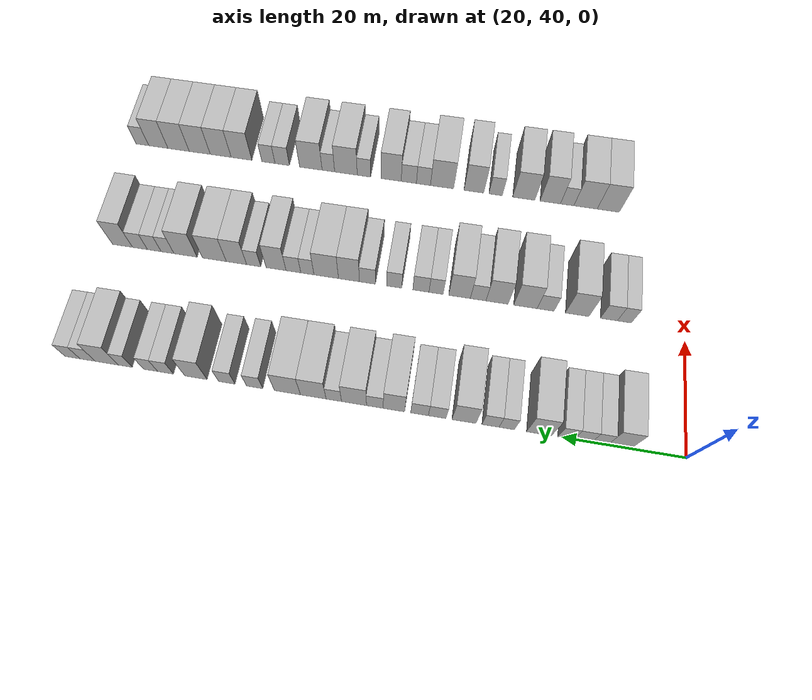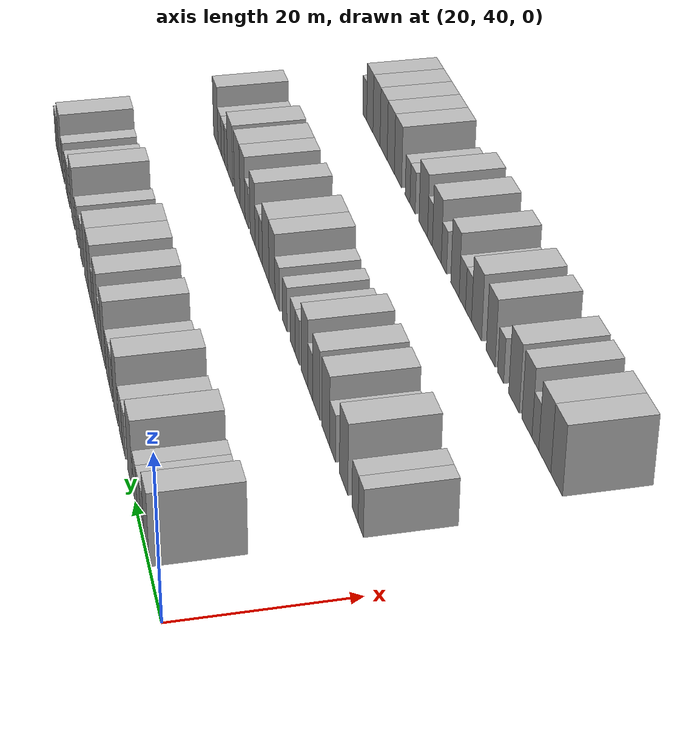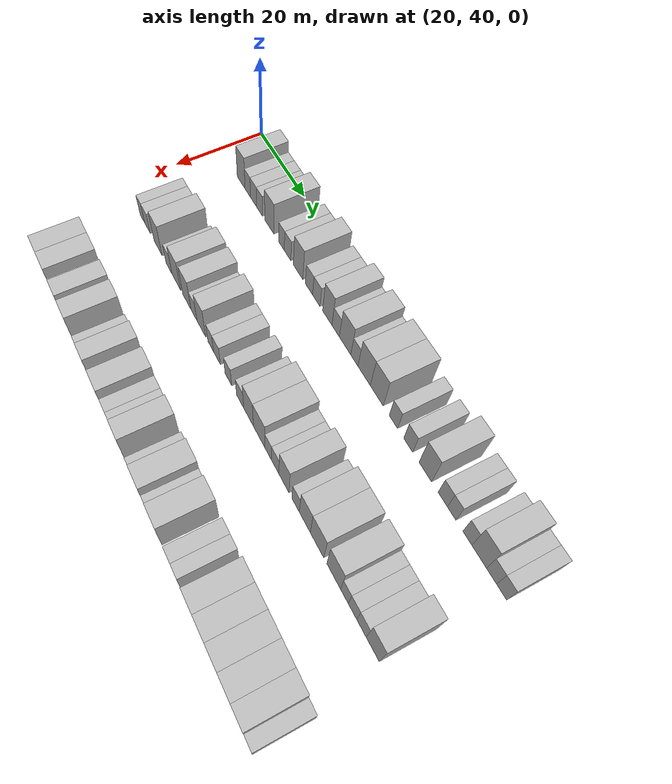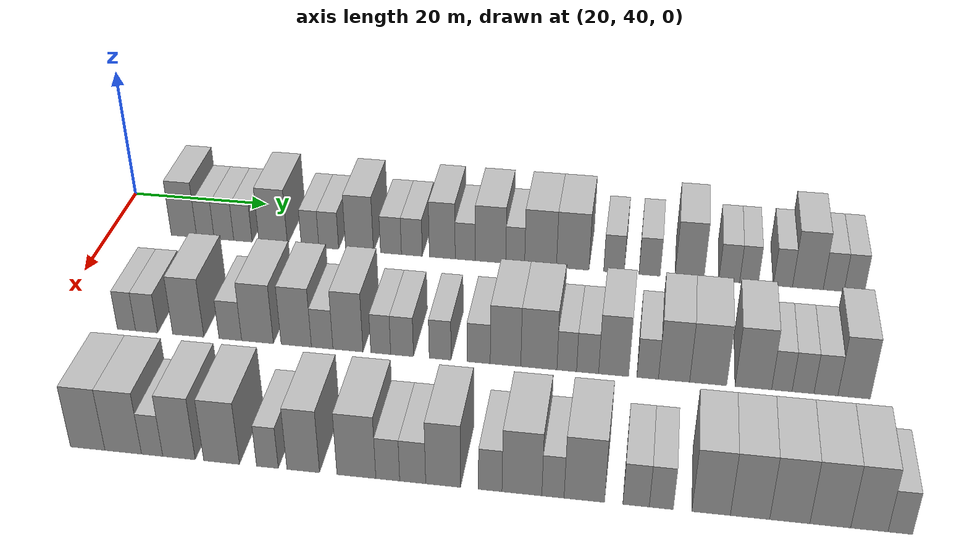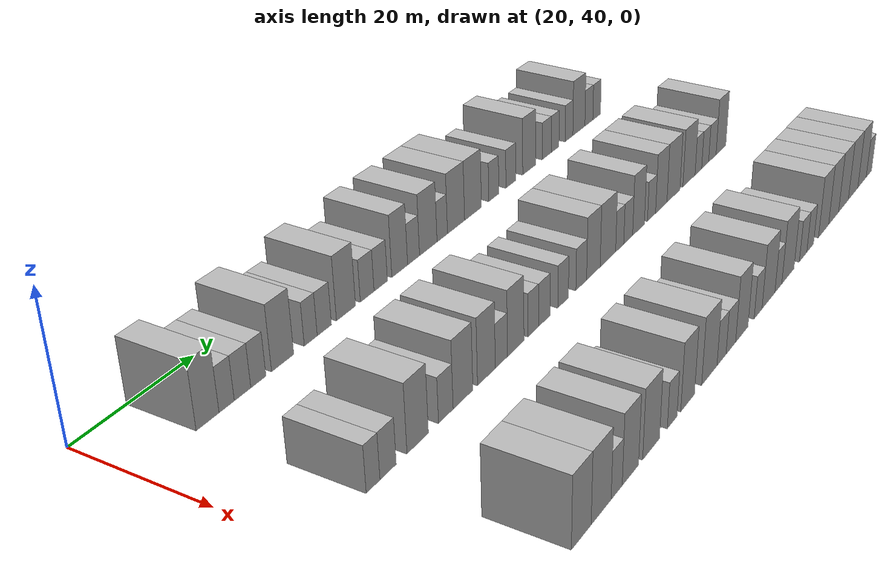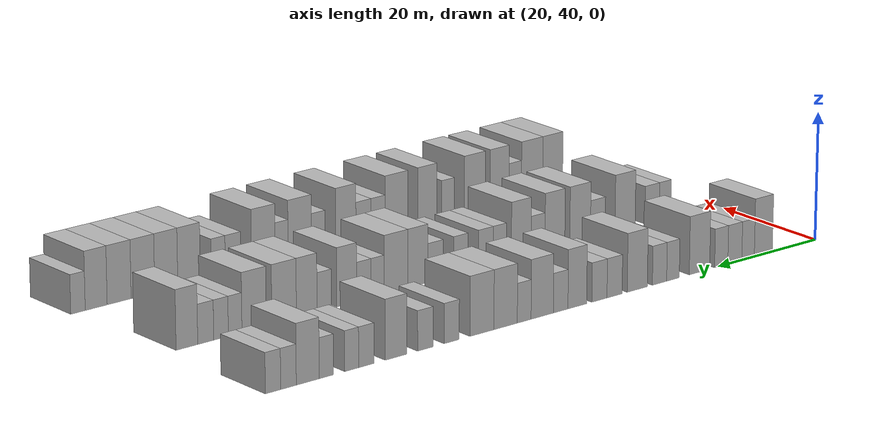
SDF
<sdf version="1.6">
 <world name="default">
  <model name="building_71">
   <static>1</static>
   <pose>25.0000 50.7296 0 0.000000 0.000000 0.000000</pose>
   <link name="link">
    <pose>0 0 4.50 0 0 0</pose>
    <collision name="collision"><geometry><box><size>10.0000 3.7367 9.0000</size></box></geometry></collision>
    <visual name="visual">
     <cast_shadows>0</cast_shadows>
     <geometry><box><size>10.0000 3.7367 9.0000</size></box></geometry>
     <material>
      <script>
       <uri>model://HANNAS_wall/materials/scripts</uri>
       <uri>model://HANNAS_wall/materials/textures</uri>
       <name>vrc/HANNAS_wall</name>
      </script>
     </material>
    </visual>
   </link>
  </model>
  <model name="building_72">
   <static>1</static>
   <pose>25.0000 53.8771 0 0.000000 0.000000 0.000000</pose>
   <link name="link">
    <pose>0 0 3.00 0 0 0</pose>
    <collision name="collision"><geometry><box><size>10.0000 2.5582 6.0000</size></box></geometry></collision>
    <visual name="visual">
     <cast_shadows>0</cast_shadows>
     <geometry><box><size>10.0000 2.5582 6.0000</size></box></geometry>
     <material>
      <script>
       <uri>model://HANNAS_wall/materials/scripts</uri>
       <uri>model://HANNAS_wall/materials/textures</uri>
       <name>vrc/HANNAS_wall</name>
      </script>
     </material>
    </visual>
   </link>
  </model>
  <model name="building_73">
   <static>1</static>
   <pose>25.0000 56.5805 0 0.000000 0.000000 0.000000</pose>
   <link name="link">
    <pose>0 0 3.00 0 0 0</pose>
    <collision name="collision"><geometry><box><size>10.0000 2.8487 6.0000</size></box></geometry></collision>
    <visual name="visual">
     <cast_shadows>0</cast_shadows>
     <geometry><box><size>10.0000 2.8487 6.0000</size></box></geometry>
     <material>
      <script>
       <uri>model://HANNAS_wall/materials/scripts</uri>
       <uri>model://HANNAS_wall/materials/textures</uri>
       <name>vrc/HANNAS_wall</name>
      </script>
     </material>
    </visual>
   </link>
  </model>
  <model name="building_74">
   <static>1</static>
   <pose>25.0000 59.3472 0 0.000000 0.000000 0.000000</pose>
   <link name="link">
    <pose>0 0 3.00 0 0 0</pose>
    <collision name="collision"><geometry><box><size>10.0000 2.6847 6.0000</size></box></geometry></collision>
    <visual name="visual">
     <cast_shadows>0</cast_shadows>
     <geometry><box><size>10.0000 2.6847 6.0000</size></box></geometry>
     <material>
      <script>
       <uri>model://HANNAS_wall/materials/scripts</uri>
       <uri>model://HANNAS_wall/materials/textures</uri>
       <name>vrc/HANNAS_wall</name>
      </script>
     </material>
    </visual>
   </link>
  </model>
  <model name="building_75">
   <static>1</static>
   <pose>25.0000 63.7441 0 0.000000 0.000000 0.000000</pose>
   <link name="link">
    <pose>0 0 4.50 0 0 0</pose>
    <collision name="collision"><geometry><box><size>10.0000 4.1091 9.0000</size></box></geometry></collision>
    <visual name="visual">
     <cast_shadows>0</cast_shadows>
     <geometry><box><size>10.0000 4.1091 9.0000</size></box></geometry>
     <material>
      <script>
       <uri>model://HANNAS_wall/materials/scripts</uri>
       <uri>model://HANNAS_wall/materials/textures</uri>
       <name>vrc/HANNAS_wall</name>
      </script>
     </material>
    </visual>
   </link>
  </model>
  <model name="building_76">
   <static>1</static>
   <pose>25.0000 69.0583 0 0.000000 0.000000 0.000000</pose>
   <link name="link">
    <pose>0 0 3.00 0 0 0</pose>
    <collision name="collision"><geometry><box><size>10.0000 2.5192 6.0000</size></box></geometry></collision>
    <visual name="visual">
     <cast_shadows>0</cast_shadows>
     <geometry><box><size>10.0000 2.5192 6.0000</size></box></geometry>
     <material>
      <script>
       <uri>model://HANNAS_wall/materials/scripts</uri>
       <uri>model://HANNAS_wall/materials/textures</uri>
       <name>vrc/HANNAS_wall</name>
      </script>
     </material>
    </visual>
   </link>
  </model>
  <model name="building_77">
   <static>1</static>
   <pose>25.0000 71.7327 0 0.000000 0.000000 0.000000</pose>
   <link name="link">
    <pose>0 0 3.00 0 0 0</pose>
    <collision name="collision"><geometry><box><size>10.0000 2.8297 6.0000</size></box></geometry></collision>
    <visual name="visual">
     <cast_shadows>0</cast_shadows>
     <geometry><box><size>10.0000 2.8297 6.0000</size></box></geometry>
     <material>
      <script>
       <uri>model://HANNAS_wall/materials/scripts</uri>
       <uri>model://HANNAS_wall/materials/textures</uri>
       <name>vrc/HANNAS_wall</name>
      </script>
     </material>
    </visual>
   </link>
  </model>
  <model name="building_78">
   <static>1</static>
   <pose>25.0000 76.1281 0 0.000000 0.000000 0.000000</pose>
   <link name="link">
    <pose>0 0 4.50 0 0 0</pose>
    <collision name="collision"><geometry><box><size>10.0000 3.9611 9.0000</size></box></geometry></collision>
    <visual name="visual">
     <cast_shadows>0</cast_shadows>
     <geometry><box><size>10.0000 3.9611 9.0000</size></box></geometry>
     <material>
      <script>
       <uri>model://HANNAS_wall/materials/scripts</uri>
       <uri>model://HANNAS_wall/materials/textures</uri>
       <name>vrc/HANNAS_wall</name>
      </script>
     </material>
    </visual>
   </link>
  </model>
  <model name="building_79">
   <static>1</static>
   <pose>25.0000 80.5866 0 0.000000 0.000000 0.000000</pose>
   <link name="link">
    <pose>0 0 3.00 0 0 0</pose>
    <collision name="collision"><geometry><box><size>10.0000 2.9560 6.0000</size></box></geometry></collision>
    <visual name="visual">
     <cast_shadows>0</cast_shadows>
     <geometry><box><size>10.0000 2.9560 6.0000</size></box></geometry>
     <material>
      <script>
       <uri>model://HANNAS_wall/materials/scripts</uri>
       <uri>model://HANNAS_wall/materials/textures</uri>
       <name>vrc/HANNAS_wall</name>
      </script>
     </material>
    </visual>
   </link>
  </model>
  <model name="building_80">
   <static>1</static>
   <pose>25.0000 83.5359 0 0.000000 0.000000 0.000000</pose>
   <link name="link">
    <pose>0 0 3.00 0 0 0</pose>
    <collision name="collision"><geometry><box><size>10.0000 2.9427 6.0000</size></box></geometry></collision>
    <visual name="visual">
     <cast_shadows>0</cast_shadows>
     <geometry><box><size>10.0000 2.9427 6.0000</size></box></geometry>
     <material>
      <script>
       <uri>model://HANNAS_wall/materials/scripts</uri>
       <uri>model://HANNAS_wall/materials/textures</uri>
       <name>vrc/HANNAS_wall</name>
      </script>
     </material>
    </visual>
   </link>
  </model>
  <model name="building_81">
   <static>1</static>
   <pose>25.0000 87.8137 0 0.000000 0.000000 0.000000</pose>
   <link name="link">
    <pose>0 0 4.50 0 0 0</pose>
    <collision name="collision"><geometry><box><size>10.0000 3.6128 9.0000</size></box></geometry></collision>
    <visual name="visual">
     <cast_shadows>0</cast_shadows>
     <geometry><box><size>10.0000 3.6128 9.0000</size></box></geometry>
     <material>
      <script>
       <uri>model://HANNAS_wall/materials/scripts</uri>
       <uri>model://HANNAS_wall/materials/textures</uri>
       <name>vrc/HANNAS_wall</name>
      </script>
     </material>
    </visual>
   </link>
  </model>
  <model name="building_82">
   <static>1</static>
   <pose>25.0000 91.0223 0 0.000000 0.000000 0.000000</pose>
   <link name="link">
    <pose>0 0 3.00 0 0 0</pose>
    <collision name="collision"><geometry><box><size>10.0000 2.8044 6.0000</size></box></geometry></collision>
    <visual name="visual">
     <cast_shadows>0</cast_shadows>
     <geometry><box><size>10.0000 2.8044 6.0000</size></box></geometry>
     <material>
      <script>
       <uri>model://HANNAS_wall/materials/scripts</uri>
       <uri>model://HANNAS_wall/materials/textures</uri>
       <name>vrc/HANNAS_wall</name>
      </script>
     </material>
    </visual>
   </link>
  </model>
  <model name="building_83">
   <static>1</static>
   <pose>25.0000 94.5426 0 0.000000 0.000000 0.000000</pose>
   <link name="link">
    <pose>0 0 4.50 0 0 0</pose>
    <collision name="collision"><geometry><box><size>10.0000 4.2363 9.0000</size></box></geometry></collision>
    <visual name="visual">
     <cast_shadows>0</cast_shadows>
     <geometry><box><size>10.0000 4.2363 9.0000</size></box></geometry>
     <material>
      <script>
       <uri>model://HANNAS_wall/materials/scripts</uri>
       <uri>model://HANNAS_wall/materials/textures</uri>
       <name>vrc/HANNAS_wall</name>
      </script>
     </material>
    </visual>
   </link>
  </model>
  <model name="building_84">
   <static>1</static>
   <pose>25.0000 97.9643 0 0.000000 0.000000 0.000000</pose>
   <link name="link">
    <pose>0 0 3.00 0 0 0</pose>
    <collision name="collision"><geometry><box><size>10.0000 2.6070 6.0000</size></box></geometry></collision>
    <visual name="visual">
     <cast_shadows>0</cast_shadows>
     <geometry><box><size>10.0000 2.6070 6.0000</size></box></geometry>
     <material>
      <script>
       <uri>model://HANNAS_wall/materials/scripts</uri>
       <uri>model://HANNAS_wall/materials/textures</uri>
       <name>vrc/HANNAS_wall</name>
      </script>
     </material>
    </visual>
   </link>
  </model>
  <model name="building_85">
   <static>1</static>
   <pose>25.0000 101.4619 0 0.000000 0.000000 0.000000</pose>
   <link name="link">
    <pose>0 0 4.50 0 0 0</pose>
    <collision name="collision"><geometry><box><size>10.0000 4.3883 9.0000</size></box></geometry></collision>
    <visual name="visual">
     <cast_shadows>0</cast_shadows>
     <geometry><box><size>10.0000 4.3883 9.0000</size></box></geometry>
     <material>
      <script>
       <uri>model://HANNAS_wall/materials/scripts</uri>
       <uri>model://HANNAS_wall/materials/textures</uri>
       <name>vrc/HANNAS_wall</name>
      </script>
     </material>
    </visual>
   </link>
  </model>
  <model name="building_86">
   <static>1</static>
   <pose>25.0000 105.8879 0 0.000000 0.000000 0.000000</pose>
   <link name="link">
    <pose>0 0 4.50 0 0 0</pose>
    <collision name="collision"><geometry><box><size>10.0000 4.4636 9.0000</size></box></geometry></collision>
    <visual name="visual">
     <cast_shadows>0</cast_shadows>
     <geometry><box><size>10.0000 4.4636 9.0000</size></box></geometry>
     <material>
      <script>
       <uri>model://HANNAS_wall/materials/scripts</uri>
       <uri>model://HANNAS_wall/materials/textures</uri>
       <name>vrc/HANNAS_wall</name>
      </script>
     </material>
    </visual>
   </link>
  </model>
  <model name="building_87">
   <static>1</static>
   <pose>25.0000 111.5137 0 0.000000 0.000000 0.000000</pose>
   <link name="link">
    <pose>0 0 3.00 0 0 0</pose>
    <collision name="collision"><geometry><box><size>10.0000 2.7881 6.0000</size></box></geometry></collision>
    <visual name="visual">
     <cast_shadows>0</cast_shadows>
     <geometry><box><size>10.0000 2.7881 6.0000</size></box></geometry>
     <material>
      <script>
       <uri>model://HANNAS_wall/materials/scripts</uri>
       <uri>model://HANNAS_wall/materials/textures</uri>
       <name>vrc/HANNAS_wall</name>
      </script>
     </material>
    </visual>
   </link>
  </model>
  <model name="building_88">
   <static>1</static>
   <pose>25.0000 116.3378 0 0.000000 0.000000 0.000000</pose>
   <link name="link">
    <pose>0 0 3.00 0 0 0</pose>
    <collision name="collision"><geometry><box><size>10.0000 2.8600 6.0000</size></box></geometry></collision>
    <visual name="visual">
     <cast_shadows>0</cast_shadows>
     <geometry><box><size>10.0000 2.8600 6.0000</size></box></geometry>
     <material>
      <script>
       <uri>model://HANNAS_wall/materials/scripts</uri>
       <uri>model://HANNAS_wall/materials/textures</uri>
       <name>vrc/HANNAS_wall</name>
      </script>
     </material>
    </visual>
   </link>
  </model>
  <model name="building_89">
   <static>1</static>
   <pose>25.0000 121.7057 0 0.000000 0.000000 0.000000</pose>
   <link name="link">
    <pose>0 0 4.50 0 0 0</pose>
    <collision name="collision"><geometry><box><size>10.0000 3.8758 9.0000</size></box></geometry></collision>
    <visual name="visual">
     <cast_shadows>0</cast_shadows>
     <geometry><box><size>10.0000 3.8758 9.0000</size></box></geometry>
     <material>
      <script>
       <uri>model://HANNAS_wall/materials/scripts</uri>
       <uri>model://HANNAS_wall/materials/textures</uri>
       <name>vrc/HANNAS_wall</name>
      </script>
     </material>
    </visual>
   </link>
  </model>
  <model name="building_90">
   <static>1</static>
   <pose>25.0000 127.0319 0 0.000000 0.000000 0.000000</pose>
   <link name="link">
    <pose>0 0 3.00 0 0 0</pose>
    <collision name="collision"><geometry><box><size>10.0000 2.7766 6.0000</size></box></geometry></collision>
    <visual name="visual">
     <cast_shadows>0</cast_shadows>
     <geometry><box><size>10.0000 2.7766 6.0000</size></box></geometry>
     <material>
      <script>
       <uri>model://HANNAS_wall/materials/scripts</uri>
       <uri>model://HANNAS_wall/materials/textures</uri>
       <name>vrc/HANNAS_wall</name>
      </script>
     </material>
    </visual>
   </link>
  </model>
  <model name="building_91">
   <static>1</static>
   <pose>25.0000 129.6608 0 0.000000 0.000000 0.000000</pose>
   <link name="link">
    <pose>0 0 3.00 0 0 0</pose>
    <collision name="collision"><geometry><box><size>10.0000 2.4812 6.0000</size></box></geometry></collision>
    <visual name="visual">
     <cast_shadows>0</cast_shadows>
     <geometry><box><size>10.0000 2.4812 6.0000</size></box></geometry>
     <material>
      <script>
       <uri>model://HANNAS_wall/materials/scripts</uri>
       <uri>model://HANNAS_wall/materials/textures</uri>
       <name>vrc/HANNAS_wall</name>
      </script>
     </material>
    </visual>
   </link>
  </model>
  <model name="building_92">
   <static>1</static>
   <pose>25.0000 134.1614 0 0.000000 0.000000 0.000000</pose>
   <link name="link">
    <pose>0 0 3.00 0 0 0</pose>
    <collision name="collision"><geometry><box><size>10.0000 2.5200 6.0000</size></box></geometry></collision>
    <visual name="visual">
     <cast_shadows>0</cast_shadows>
     <geometry><box><size>10.0000 2.5200 6.0000</size></box></geometry>
     <material>
      <script>
       <uri>model://HANNAS_wall/materials/scripts</uri>
       <uri>model://HANNAS_wall/materials/textures</uri>
       <name>vrc/HANNAS_wall</name>
      </script>
     </material>
    </visual>
   </link>
  </model>
  <model name="building_93">
   <static>1</static>
   <pose>25.0000 137.4407 0 0.000000 0.000000 0.000000</pose>
   <link name="link">
    <pose>0 0 4.50 0 0 0</pose>
    <collision name="collision"><geometry><box><size>10.0000 4.0385 9.0000</size></box></geometry></collision>
    <visual name="visual">
     <cast_shadows>0</cast_shadows>
     <geometry><box><size>10.0000 4.0385 9.0000</size></box></geometry>
     <material>
      <script>
       <uri>model://HANNAS_wall/materials/scripts</uri>
       <uri>model://HANNAS_wall/materials/textures</uri>
       <name>vrc/HANNAS_wall</name>
      </script>
     </material>
    </visual>
   </link>
  </model>
  <model name="building_94">
   <static>1</static>
   <pose>25.0000 140.8231 0 0.000000 0.000000 0.000000</pose>
   <link name="link">
    <pose>0 0 3.00 0 0 0</pose>
    <collision name="collision"><geometry><box><size>10.0000 2.7263 6.0000</size></box></geometry></collision>
    <visual name="visual">
     <cast_shadows>0</cast_shadows>
     <geometry><box><size>10.0000 2.7263 6.0000</size></box></geometry>
     <material>
      <script>
       <uri>model://HANNAS_wall/materials/scripts</uri>
       <uri>model://HANNAS_wall/materials/textures</uri>
       <name>vrc/HANNAS_wall</name>
      </script>
     </material>
    </visual>
   </link>
  </model>
  <model name="building_95">
   <static>1</static>
   <pose>25.0000 143.5193 0 0.000000 0.000000 0.000000</pose>
   <link name="link">
    <pose>0 0 3.00 0 0 0</pose>
    <collision name="collision"><geometry><box><size>10.0000 2.6661 6.0000</size></box></geometry></collision>
    <visual name="visual">
     <cast_shadows>0</cast_shadows>
     <geometry><box><size>10.0000 2.6661 6.0000</size></box></geometry>
     <material>
      <script>
       <uri>model://HANNAS_wall/materials/scripts</uri>
       <uri>model://HANNAS_wall/materials/textures</uri>
       <name>vrc/HANNAS_wall</name>
      </script>
     </material>
    </visual>
   </link>
  </model>
  <model name="building_200">
   <static>1</static>
   <pose>47.0000 50.3851 0 0.000000 0.000000 0.000000</pose>
   <link name="link">
    <pose>0 0 3.00 0 0 0</pose>
    <collision name="collision"><geometry><box><size>10.0000 2.4344 6.0000</size></box></geometry></collision>
    <visual name="visual">
     <cast_shadows>0</cast_shadows>
     <geometry><box><size>10.0000 2.4344 6.0000</size></box></geometry>
     <material>
      <script>
       <uri>model://HANNAS_wall/materials/scripts</uri>
       <uri>model://HANNAS_wall/materials/textures</uri>
       <name>vrc/HANNAS_wall</name>
      </script>
     </material>
    </visual>
   </link>
  </model>
  <model name="building_201">
   <static>1</static>
   <pose>47.0000 53.0761 0 0.000000 0.000000 0.000000</pose>
   <link name="link">
    <pose>0 0 3.00 0 0 0</pose>
    <collision name="collision"><geometry><box><size>10.0000 2.9476 6.0000</size></box></geometry></collision>
    <visual name="visual">
     <cast_shadows>0</cast_shadows>
     <geometry><box><size>10.0000 2.9476 6.0000</size></box></geometry>
     <material>
      <script>
       <uri>model://HANNAS_wall/materials/scripts</uri>
       <uri>model://HANNAS_wall/materials/textures</uri>
       <name>vrc/HANNAS_wall</name>
      </script>
     </material>
    </visual>
   </link>
  </model>
  <model name="building_202">
   <static>1</static>
   <pose>47.0000 58.6102 0 0.000000 0.000000 0.000000</pose>
   <link name="link">
    <pose>0 0 4.50 0 0 0</pose>
    <collision name="collision"><geometry><box><size>10.0000 4.1204 9.0000</size></box></geometry></collision>
    <visual name="visual">
     <cast_shadows>0</cast_shadows>
     <geometry><box><size>10.0000 4.1204 9.0000</size></box></geometry>
     <material>
      <script>
       <uri>model://HANNAS_wall/materials/scripts</uri>
       <uri>model://HANNAS_wall/materials/textures</uri>
       <name>vrc/HANNAS_wall</name>
      </script>
     </material>
    </visual>
   </link>
  </model>
  <model name="building_203">
   <static>1</static>
   <pose>47.0000 64.1570 0 0.000000 0.000000 0.000000</pose>
   <link name="link">
    <pose>0 0 3.00 0 0 0</pose>
    <collision name="collision"><geometry><box><size>10.0000 2.9733 6.0000</size></box></geometry></collision>
    <visual name="visual">
     <cast_shadows>0</cast_shadows>
     <geometry><box><size>10.0000 2.9733 6.0000</size></box></geometry>
     <material>
      <script>
       <uri>model://HANNAS_wall/materials/scripts</uri>
       <uri>model://HANNAS_wall/materials/textures</uri>
       <name>vrc/HANNAS_wall</name>
      </script>
     </material>
    </visual>
   </link>
  </model>
  <model name="building_204">
   <static>1</static>
   <pose>47.0000 67.7203 0 0.000000 0.000000 0.000000</pose>
   <link name="link">
    <pose>0 0 4.50 0 0 0</pose>
    <collision name="collision"><geometry><box><size>10.0000 4.1532 9.0000</size></box></geometry></collision>
    <visual name="visual">
     <cast_shadows>0</cast_shadows>
     <geometry><box><size>10.0000 4.1532 9.0000</size></box></geometry>
     <material>
      <script>
       <uri>model://HANNAS_wall/materials/scripts</uri>
       <uri>model://HANNAS_wall/materials/textures</uri>
       <name>vrc/HANNAS_wall</name>
      </script>
     </material>
    </visual>
   </link>
  </model>
  <model name="building_205">
   <static>1</static>
   <pose>47.0000 72.7662 0 0.000000 0.000000 0.000000</pose>
   <link name="link">
    <pose>0 0 4.50 0 0 0</pose>
    <collision name="collision"><geometry><box><size>10.0000 3.9386 9.0000</size></box></geometry></collision>
    <visual name="visual">
     <cast_shadows>0</cast_shadows>
     <geometry><box><size>10.0000 3.9386 9.0000</size></box></geometry>
     <material>
      <script>
       <uri>model://HANNAS_wall/materials/scripts</uri>
       <uri>model://HANNAS_wall/materials/textures</uri>
       <name>vrc/HANNAS_wall</name>
      </script>
     </material>
    </visual>
   </link>
  </model>
  <model name="building_206">
   <static>1</static>
   <pose>47.0000 76.1237 0 0.000000 0.000000 0.000000</pose>
   <link name="link">
    <pose>0 0 3.00 0 0 0</pose>
    <collision name="collision"><geometry><box><size>10.0000 2.7765 6.0000</size></box></geometry></collision>
    <visual name="visual">
     <cast_shadows>0</cast_shadows>
     <geometry><box><size>10.0000 2.7765 6.0000</size></box></geometry>
     <material>
      <script>
       <uri>model://HANNAS_wall/materials/scripts</uri>
       <uri>model://HANNAS_wall/materials/textures</uri>
       <name>vrc/HANNAS_wall</name>
      </script>
     </material>
    </visual>
   </link>
  </model>
  <model name="building_207">
   <static>1</static>
   <pose>47.0000 79.4471 0 0.000000 0.000000 0.000000</pose>
   <link name="link">
    <pose>0 0 4.50 0 0 0</pose>
    <collision name="collision"><geometry><box><size>10.0000 3.8703 9.0000</size></box></geometry></collision>
    <visual name="visual">
     <cast_shadows>0</cast_shadows>
     <geometry><box><size>10.0000 3.8703 9.0000</size></box></geometry>
     <material>
      <script>
       <uri>model://HANNAS_wall/materials/scripts</uri>
       <uri>model://HANNAS_wall/materials/textures</uri>
       <name>vrc/HANNAS_wall</name>
      </script>
     </material>
    </visual>
   </link>
  </model>
  <model name="building_208">
   <static>1</static>
   <pose>47.0000 83.6517 0 0.000000 0.000000 0.000000</pose>
   <link name="link">
    <pose>0 0 3.00 0 0 0</pose>
    <collision name="collision"><geometry><box><size>10.0000 2.5388 6.0000</size></box></geometry></collision>
    <visual name="visual">
     <cast_shadows>0</cast_shadows>
     <geometry><box><size>10.0000 2.5388 6.0000</size></box></geometry>
     <material>
      <script>
       <uri>model://HANNAS_wall/materials/scripts</uri>
       <uri>model://HANNAS_wall/materials/textures</uri>
       <name>vrc/HANNAS_wall</name>
      </script>
     </material>
    </visual>
   </link>
  </model>
  <model name="building_209">
   <static>1</static>
   <pose>47.0000 86.3728 0 0.000000 0.000000 0.000000</pose>
   <link name="link">
    <pose>0 0 3.00 0 0 0</pose>
    <collision name="collision"><geometry><box><size>10.0000 2.9034 6.0000</size></box></geometry></collision>
    <visual name="visual">
     <cast_shadows>0</cast_shadows>
     <geometry><box><size>10.0000 2.9034 6.0000</size></box></geometry>
     <material>
      <script>
       <uri>model://HANNAS_wall/materials/scripts</uri>
       <uri>model://HANNAS_wall/materials/textures</uri>
       <name>vrc/HANNAS_wall</name>
      </script>
     </material>
    </visual>
   </link>
  </model>
  <model name="building_210">
   <static>1</static>
   <pose>47.0000 91.2044 0 0.000000 0.000000 0.000000</pose>
   <link name="link">
    <pose>0 0 3.00 0 0 0</pose>
    <collision name="collision"><geometry><box><size>10.0000 2.7597 6.0000</size></box></geometry></collision>
    <visual name="visual">
     <cast_shadows>0</cast_shadows>
     <geometry><box><size>10.0000 2.7597 6.0000</size></box></geometry>
     <material>
      <script>
       <uri>model://HANNAS_wall/materials/scripts</uri>
       <uri>model://HANNAS_wall/materials/textures</uri>
       <name>vrc/HANNAS_wall</name>
      </script>
     </material>
    </visual>
   </link>
  </model>
  <model name="building_211">
   <static>1</static>
   <pose>47.0000 96.0433 0 0.000000 0.000000 0.000000</pose>
   <link name="link">
    <pose>0 0 3.00 0 0 0</pose>
    <collision name="collision"><geometry><box><size>10.0000 2.9183 6.0000</size></box></geometry></collision>
    <visual name="visual">
     <cast_shadows>0</cast_shadows>
     <geometry><box><size>10.0000 2.9183 6.0000</size></box></geometry>
     <material>
      <script>
       <uri>model://HANNAS_wall/materials/scripts</uri>
       <uri>model://HANNAS_wall/materials/textures</uri>
       <name>vrc/HANNAS_wall</name>
      </script>
     </material>
    </visual>
   </link>
  </model>
  <model name="building_212">
   <static>1</static>
   <pose>47.0000 99.4123 0 0.000000 0.000000 0.000000</pose>
   <link name="link">
    <pose>0 0 4.50 0 0 0</pose>
    <collision name="collision"><geometry><box><size>10.0000 3.8197 9.0000</size></box></geometry></collision>
    <visual name="visual">
     <cast_shadows>0</cast_shadows>
     <geometry><box><size>10.0000 3.8197 9.0000</size></box></geometry>
     <material>
      <script>
       <uri>model://HANNAS_wall/materials/scripts</uri>
       <uri>model://HANNAS_wall/materials/textures</uri>
       <name>vrc/HANNAS_wall</name>
      </script>
     </material>
    </visual>
   </link>
  </model>
  <model name="building_213">
   <static>1</static>
   <pose>47.0000 103.5693 0 0.000000 0.000000 0.000000</pose>
   <link name="link">
    <pose>0 0 4.50 0 0 0</pose>
    <collision name="collision"><geometry><box><size>10.0000 4.4943 9.0000</size></box></geometry></collision>
    <visual name="visual">
     <cast_shadows>0</cast_shadows>
     <geometry><box><size>10.0000 4.4943 9.0000</size></box></geometry>
     <material>
      <script>
       <uri>model://HANNAS_wall/materials/scripts</uri>
       <uri>model://HANNAS_wall/materials/textures</uri>
       <name>vrc/HANNAS_wall</name>
      </script>
     </material>
    </visual>
   </link>
  </model>
  <model name="building_214">
   <static>1</static>
   <pose>47.0000 107.0297 0 0.000000 0.000000 0.000000</pose>
   <link name="link">
    <pose>0 0 3.00 0 0 0</pose>
    <collision name="collision"><geometry><box><size>10.0000 2.4264 6.0000</size></box></geometry></collision>
    <visual name="visual">
     <cast_shadows>0</cast_shadows>
     <geometry><box><size>10.0000 2.4264 6.0000</size></box></geometry>
     <material>
      <script>
       <uri>model://HANNAS_wall/materials/scripts</uri>
       <uri>model://HANNAS_wall/materials/textures</uri>
       <name>vrc/HANNAS_wall</name>
      </script>
     </material>
    </visual>
   </link>
  </model>
  <model name="building_215">
   <static>1</static>
   <pose>47.0000 109.5999 0 0.000000 0.000000 0.000000</pose>
   <link name="link">
    <pose>0 0 3.00 0 0 0</pose>
    <collision name="collision"><geometry><box><size>10.0000 2.7139 6.0000</size></box></geometry></collision>
    <visual name="visual">
     <cast_shadows>0</cast_shadows>
     <geometry><box><size>10.0000 2.7139 6.0000</size></box></geometry>
     <material>
      <script>
       <uri>model://HANNAS_wall/materials/scripts</uri>
       <uri>model://HANNAS_wall/materials/textures</uri>
       <name>vrc/HANNAS_wall</name>
      </script>
     </material>
    </visual>
   </link>
  </model>
  <model name="building_216">
   <static>1</static>
   <pose>47.0000 112.7995 0 0.000000 0.000000 0.000000</pose>
   <link name="link">
    <pose>0 0 4.50 0 0 0</pose>
    <collision name="collision"><geometry><box><size>10.0000 3.6853 9.0000</size></box></geometry></collision>
    <visual name="visual">
     <cast_shadows>0</cast_shadows>
     <geometry><box><size>10.0000 3.6853 9.0000</size></box></geometry>
     <material>
      <script>
       <uri>model://HANNAS_wall/materials/scripts</uri>
       <uri>model://HANNAS_wall/materials/textures</uri>
       <name>vrc/HANNAS_wall</name>
      </script>
     </material>
    </visual>
   </link>
  </model>
  <model name="building_217">
   <static>1</static>
   <pose>47.0000 116.9558 0 0.000000 0.000000 0.000000</pose>
   <link name="link">
    <pose>0 0 3.00 0 0 0</pose>
    <collision name="collision"><geometry><box><size>10.0000 2.6274 6.0000</size></box></geometry></collision>
    <visual name="visual">
     <cast_shadows>0</cast_shadows>
     <geometry><box><size>10.0000 2.6274 6.0000</size></box></geometry>
     <material>
      <script>
       <uri>model://HANNAS_wall/materials/scripts</uri>
       <uri>model://HANNAS_wall/materials/textures</uri>
       <name>vrc/HANNAS_wall</name>
      </script>
     </material>
    </visual>
   </link>
  </model>
  <model name="building_218">
   <static>1</static>
   <pose>47.0000 120.1634 0 0.000000 0.000000 0.000000</pose>
   <link name="link">
    <pose>0 0 4.50 0 0 0</pose>
    <collision name="collision"><geometry><box><size>10.0000 3.7877 9.0000</size></box></geometry></collision>
    <visual name="visual">
     <cast_shadows>0</cast_shadows>
     <geometry><box><size>10.0000 3.7877 9.0000</size></box></geometry>
     <material>
      <script>
       <uri>model://HANNAS_wall/materials/scripts</uri>
       <uri>model://HANNAS_wall/materials/textures</uri>
       <name>vrc/HANNAS_wall</name>
      </script>
     </material>
    </visual>
   </link>
  </model>
  <model name="building_219">
   <static>1</static>
   <pose>47.0000 124.2937 0 0.000000 0.000000 0.000000</pose>
   <link name="link">
    <pose>0 0 4.50 0 0 0</pose>
    <collision name="collision"><geometry><box><size>10.0000 4.4730 9.0000</size></box></geometry></collision>
    <visual name="visual">
     <cast_shadows>0</cast_shadows>
     <geometry><box><size>10.0000 4.4730 9.0000</size></box></geometry>
     <material>
      <script>
       <uri>model://HANNAS_wall/materials/scripts</uri>
       <uri>model://HANNAS_wall/materials/textures</uri>
       <name>vrc/HANNAS_wall</name>
      </script>
     </material>
    </visual>
   </link>
  </model>
  <model name="building_220">
   <static>1</static>
   <pose>47.0000 129.7181 0 0.000000 0.000000 0.000000</pose>
   <link name="link">
    <pose>0 0 4.50 0 0 0</pose>
    <collision name="collision"><geometry><box><size>10.0000 4.3758 9.0000</size></box></geometry></collision>
    <visual name="visual">
     <cast_shadows>0</cast_shadows>
     <geometry><box><size>10.0000 4.3758 9.0000</size></box></geometry>
     <material>
      <script>
       <uri>model://HANNAS_wall/materials/scripts</uri>
       <uri>model://HANNAS_wall/materials/textures</uri>
       <name>vrc/HANNAS_wall</name>
      </script>
     </material>
    </visual>
   </link>
  </model>
  <model name="building_221">
   <static>1</static>
   <pose>47.0000 133.1215 0 0.000000 0.000000 0.000000</pose>
   <link name="link">
    <pose>0 0 3.00 0 0 0</pose>
    <collision name="collision"><geometry><box><size>10.0000 2.4311 6.0000</size></box></geometry></collision>
    <visual name="visual">
     <cast_shadows>0</cast_shadows>
     <geometry><box><size>10.0000 2.4311 6.0000</size></box></geometry>
     <material>
      <script>
       <uri>model://HANNAS_wall/materials/scripts</uri>
       <uri>model://HANNAS_wall/materials/textures</uri>
       <name>vrc/HANNAS_wall</name>
      </script>
     </material>
    </visual>
   </link>
  </model>
  <model name="building_222">
   <static>1</static>
   <pose>47.0000 135.6371 0 0.000000 0.000000 0.000000</pose>
   <link name="link">
    <pose>0 0 3.00 0 0 0</pose>
    <collision name="collision"><geometry><box><size>10.0000 2.6001 6.0000</size></box></geometry></collision>
    <visual name="visual">
     <cast_shadows>0</cast_shadows>
     <geometry><box><size>10.0000 2.6001 6.0000</size></box></geometry>
     <material>
      <script>
       <uri>model://HANNAS_wall/materials/scripts</uri>
       <uri>model://HANNAS_wall/materials/textures</uri>
       <name>vrc/HANNAS_wall</name>
      </script>
     </material>
    </visual>
   </link>
  </model>
  <model name="building_223">
   <static>1</static>
   <pose>47.0000 138.3552 0 0.000000 0.000000 0.000000</pose>
   <link name="link">
    <pose>0 0 3.00 0 0 0</pose>
    <collision name="collision"><geometry><box><size>10.0000 2.8360 6.0000</size></box></geometry></collision>
    <visual name="visual">
     <cast_shadows>0</cast_shadows>
     <geometry><box><size>10.0000 2.8360 6.0000</size></box></geometry>
     <material>
      <script>
       <uri>model://HANNAS_wall/materials/scripts</uri>
       <uri>model://HANNAS_wall/materials/textures</uri>
       <name>vrc/HANNAS_wall</name>
      </script>
     </material>
    </visual>
   </link>
  </model>
  <model name="building_224">
   <static>1</static>
   <pose>47.0000 141.6776 0 0.000000 0.000000 0.000000</pose>
   <link name="link">
    <pose>0 0 4.50 0 0 0</pose>
    <collision name="collision"><geometry><box><size>10.0000 3.8087 9.0000</size></box></geometry></collision>
    <visual name="visual">
     <cast_shadows>0</cast_shadows>
     <geometry><box><size>10.0000 3.8087 9.0000</size></box></geometry>
     <material>
      <script>
       <uri>model://HANNAS_wall/materials/scripts</uri>
       <uri>model://HANNAS_wall/materials/textures</uri>
       <name>vrc/HANNAS_wall</name>
      </script>
     </material>
    </visual>
   </link>
  </model>
  <model name="building_319">
   <static>1</static>
   <pose>69.0000 53.8874 0 0.000000 0.000000 0.000000</pose>
   <link name="link">
    <pose>0 0 4.50 0 0 0</pose>
    <collision name="collision"><geometry><box><size>10.0000 4.1358 9.0000</size></box></geometry></collision>
    <visual name="visual">
     <cast_shadows>0</cast_shadows>
     <geometry><box><size>10.0000 4.1358 9.0000</size></box></geometry>
     <material>
      <script>
       <uri>model://HANNAS_wall/materials/scripts</uri>
       <uri>model://HANNAS_wall/materials/textures</uri>
       <name>vrc/HANNAS_wall</name>
      </script>
     </material>
    </visual>
   </link>
  </model>
  <model name="building_320">
   <static>1</static>
   <pose>69.0000 58.1391 0 0.000000 0.000000 0.000000</pose>
   <link name="link">
    <pose>0 0 4.50 0 0 0</pose>
    <collision name="collision"><geometry><box><size>10.0000 4.3676 9.0000</size></box></geometry></collision>
    <visual name="visual">
     <cast_shadows>0</cast_shadows>
     <geometry><box><size>10.0000 4.3676 9.0000</size></box></geometry>
     <material>
      <script>
       <uri>model://HANNAS_wall/materials/scripts</uri>
       <uri>model://HANNAS_wall/materials/textures</uri>
       <name>vrc/HANNAS_wall</name>
      </script>
     </material>
    </visual>
   </link>
  </model>
  <model name="building_321">
   <static>1</static>
   <pose>69.0000 61.5845 0 0.000000 0.000000 0.000000</pose>
   <link name="link">
    <pose>0 0 3.00 0 0 0</pose>
    <collision name="collision"><geometry><box><size>10.0000 2.5232 6.0000</size></box></geometry></collision>
    <visual name="visual">
     <cast_shadows>0</cast_shadows>
     <geometry><box><size>10.0000 2.5232 6.0000</size></box></geometry>
     <material>
      <script>
       <uri>model://HANNAS_wall/materials/scripts</uri>
       <uri>model://HANNAS_wall/materials/textures</uri>
       <name>vrc/HANNAS_wall</name>
      </script>
     </material>
    </visual>
   </link>
  </model>
  <model name="building_322">
   <static>1</static>
   <pose>69.0000 64.7650 0 0.000000 0.000000 0.000000</pose>
   <link name="link">
    <pose>0 0 4.50 0 0 0</pose>
    <collision name="collision"><geometry><box><size>10.0000 3.8378 9.0000</size></box></geometry></collision>
    <visual name="visual">
     <cast_shadows>0</cast_shadows>
     <geometry><box><size>10.0000 3.8378 9.0000</size></box></geometry>
     <material>
      <script>
       <uri>model://HANNAS_wall/materials/scripts</uri>
       <uri>model://HANNAS_wall/materials/textures</uri>
       <name>vrc/HANNAS_wall</name>
      </script>
     </material>
    </visual>
   </link>
  </model>
  <model name="building_323">
   <static>1</static>
   <pose>69.0000 69.7768 0 0.000000 0.000000 0.000000</pose>
   <link name="link">
    <pose>0 0 4.50 0 0 0</pose>
    <collision name="collision"><geometry><box><size>10.0000 4.1857 9.0000</size></box></geometry></collision>
    <visual name="visual">
     <cast_shadows>0</cast_shadows>
     <geometry><box><size>10.0000 4.1857 9.0000</size></box></geometry>
     <material>
      <script>
       <uri>model://HANNAS_wall/materials/scripts</uri>
       <uri>model://HANNAS_wall/materials/textures</uri>
       <name>vrc/HANNAS_wall</name>
      </script>
     </material>
    </visual>
   </link>
  </model>
  <model name="building_324">
   <static>1</static>
   <pose>69.0000 75.1324 0 0.000000 0.000000 0.000000</pose>
   <link name="link">
    <pose>0 0 3.00 0 0 0</pose>
    <collision name="collision"><geometry><box><size>10.0000 2.5255 6.0000</size></box></geometry></collision>
    <visual name="visual">
     <cast_shadows>0</cast_shadows>
     <geometry><box><size>10.0000 2.5255 6.0000</size></box></geometry>
     <material>
      <script>
       <uri>model://HANNAS_wall/materials/scripts</uri>
       <uri>model://HANNAS_wall/materials/textures</uri>
       <name>vrc/HANNAS_wall</name>
      </script>
     </material>
    </visual>
   </link>
  </model>
  <model name="building_325">
   <static>1</static>
   <pose>69.0000 79.2779 0 0.000000 0.000000 0.000000</pose>
   <link name="link">
    <pose>0 0 4.50 0 0 0</pose>
    <collision name="collision"><geometry><box><size>10.0000 3.7656 9.0000</size></box></geometry></collision>
    <visual name="visual">
     <cast_shadows>0</cast_shadows>
     <geometry><box><size>10.0000 3.7656 9.0000</size></box></geometry>
     <material>
      <script>
       <uri>model://HANNAS_wall/materials/scripts</uri>
       <uri>model://HANNAS_wall/materials/textures</uri>
       <name>vrc/HANNAS_wall</name>
      </script>
     </material>
    </visual>
   </link>
  </model>
  <model name="building_326">
   <static>1</static>
   <pose>69.0000 85.3823 0 0.000000 0.000000 0.000000</pose>
   <link name="link">
    <pose>0 0 4.50 0 0 0</pose>
    <collision name="collision"><geometry><box><size>10.0000 4.4432 9.0000</size></box></geometry></collision>
    <visual name="visual">
     <cast_shadows>0</cast_shadows>
     <geometry><box><size>10.0000 4.4432 9.0000</size></box></geometry>
     <material>
      <script>
       <uri>model://HANNAS_wall/materials/scripts</uri>
       <uri>model://HANNAS_wall/materials/textures</uri>
       <name>vrc/HANNAS_wall</name>
      </script>
     </material>
    </visual>
   </link>
  </model>
  <model name="building_327">
   <static>1</static>
   <pose>69.0000 88.9604 0 0.000000 0.000000 0.000000</pose>
   <link name="link">
    <pose>0 0 3.00 0 0 0</pose>
    <collision name="collision"><geometry><box><size>10.0000 2.7129 6.0000</size></box></geometry></collision>
    <visual name="visual">
     <cast_shadows>0</cast_shadows>
     <geometry><box><size>10.0000 2.7129 6.0000</size></box></geometry>
     <material>
      <script>
       <uri>model://HANNAS_wall/materials/scripts</uri>
       <uri>model://HANNAS_wall/materials/textures</uri>
       <name>vrc/HANNAS_wall</name>
      </script>
     </material>
    </visual>
   </link>
  </model>
  <model name="building_328">
   <static>1</static>
   <pose>69.0000 91.7883 0 0.000000 0.000000 0.000000</pose>
   <link name="link">
    <pose>0 0 3.00 0 0 0</pose>
    <collision name="collision"><geometry><box><size>10.0000 2.9428 6.0000</size></box></geometry></collision>
    <visual name="visual">
     <cast_shadows>0</cast_shadows>
     <geometry><box><size>10.0000 2.9428 6.0000</size></box></geometry>
     <material>
      <script>
       <uri>model://HANNAS_wall/materials/scripts</uri>
       <uri>model://HANNAS_wall/materials/textures</uri>
       <name>vrc/HANNAS_wall</name>
      </script>
     </material>
    </visual>
   </link>
  </model>
  <model name="building_329">
   <static>1</static>
   <pose>69.0000 95.2253 0 0.000000 0.000000 0.000000</pose>
   <link name="link">
    <pose>0 0 4.50 0 0 0</pose>
    <collision name="collision"><geometry><box><size>10.0000 3.9313 9.0000</size></box></geometry></collision>
    <visual name="visual">
     <cast_shadows>0</cast_shadows>
     <geometry><box><size>10.0000 3.9313 9.0000</size></box></geometry>
     <material>
      <script>
       <uri>model://HANNAS_wall/materials/scripts</uri>
       <uri>model://HANNAS_wall/materials/textures</uri>
       <name>vrc/HANNAS_wall</name>
      </script>
     </material>
    </visual>
   </link>
  </model>
  <model name="building_330">
   <static>1</static>
   <pose>69.0000 100.5036 0 0.000000 0.000000 0.000000</pose>
   <link name="link">
    <pose>0 0 3.00 0 0 0</pose>
    <collision name="collision"><geometry><box><size>10.0000 2.6253 6.0000</size></box></geometry></collision>
    <visual name="visual">
     <cast_shadows>0</cast_shadows>
     <geometry><box><size>10.0000 2.6253 6.0000</size></box></geometry>
     <material>
      <script>
       <uri>model://HANNAS_wall/materials/scripts</uri>
       <uri>model://HANNAS_wall/materials/textures</uri>
       <name>vrc/HANNAS_wall</name>
      </script>
     </material>
    </visual>
   </link>
  </model>
  <model name="building_331">
   <static>1</static>
   <pose>69.0000 104.0275 0 0.000000 0.000000 0.000000</pose>
   <link name="link">
    <pose>0 0 4.50 0 0 0</pose>
    <collision name="collision"><geometry><box><size>10.0000 4.4226 9.0000</size></box></geometry></collision>
    <visual name="visual">
     <cast_shadows>0</cast_shadows>
     <geometry><box><size>10.0000 4.4226 9.0000</size></box></geometry>
     <material>
      <script>
       <uri>model://HANNAS_wall/materials/scripts</uri>
       <uri>model://HANNAS_wall/materials/textures</uri>
       <name>vrc/HANNAS_wall</name>
      </script>
     </material>
    </visual>
   </link>
  </model>
  <model name="building_332">
   <static>1</static>
   <pose>69.0000 107.4672 0 0.000000 0.000000 0.000000</pose>
   <link name="link">
    <pose>0 0 3.00 0 0 0</pose>
    <collision name="collision"><geometry><box><size>10.0000 2.4568 6.0000</size></box></geometry></collision>
    <visual name="visual">
     <cast_shadows>0</cast_shadows>
     <geometry><box><size>10.0000 2.4568 6.0000</size></box></geometry>
     <material>
      <script>
       <uri>model://HANNAS_wall/materials/scripts</uri>
       <uri>model://HANNAS_wall/materials/textures</uri>
       <name>vrc/HANNAS_wall</name>
      </script>
     </material>
    </visual>
   </link>
  </model>
  <model name="building_333">
   <static>1</static>
   <pose>69.0000 110.9164 0 0.000000 0.000000 0.000000</pose>
   <link name="link">
    <pose>0 0 4.50 0 0 0</pose>
    <collision name="collision"><geometry><box><size>10.0000 4.4415 9.0000</size></box></geometry></collision>
    <visual name="visual">
     <cast_shadows>0</cast_shadows>
     <geometry><box><size>10.0000 4.4415 9.0000</size></box></geometry>
     <material>
      <script>
       <uri>model://HANNAS_wall/materials/scripts</uri>
       <uri>model://HANNAS_wall/materials/textures</uri>
       <name>vrc/HANNAS_wall</name>
      </script>
     </material>
    </visual>
   </link>
  </model>
  <model name="building_334">
   <static>1</static>
   <pose>69.0000 116.5721 0 0.000000 0.000000 0.000000</pose>
   <link name="link">
    <pose>0 0 3.00 0 0 0</pose>
    <collision name="collision"><geometry><box><size>10.0000 2.8699 6.0000</size></box></geometry></collision>
    <visual name="visual">
     <cast_shadows>0</cast_shadows>
     <geometry><box><size>10.0000 2.8699 6.0000</size></box></geometry>
     <material>
      <script>
       <uri>model://HANNAS_wall/materials/scripts</uri>
       <uri>model://HANNAS_wall/materials/textures</uri>
       <name>vrc/HANNAS_wall</name>
      </script>
     </material>
    </visual>
   </link>
  </model>
  <model name="building_335">
   <static>1</static>
   <pose>69.0000 119.3106 0 0.000000 0.000000 0.000000</pose>
   <link name="link">
    <pose>0 0 3.00 0 0 0</pose>
    <collision name="collision"><geometry><box><size>10.0000 2.6069 6.0000</size></box></geometry></collision>
    <visual name="visual">
     <cast_shadows>0</cast_shadows>
     <geometry><box><size>10.0000 2.6069 6.0000</size></box></geometry>
     <material>
      <script>
       <uri>model://HANNAS_wall/materials/scripts</uri>
       <uri>model://HANNAS_wall/materials/textures</uri>
       <name>vrc/HANNAS_wall</name>
      </script>
     </material>
    </visual>
   </link>
  </model>
  <model name="building_336">
   <static>1</static>
   <pose>69.0000 124.6812 0 0.000000 0.000000 0.000000</pose>
   <link name="link">
    <pose>0 0 4.50 0 0 0</pose>
    <collision name="collision"><geometry><box><size>10.0000 4.1343 9.0000</size></box></geometry></collision>
    <visual name="visual">
     <cast_shadows>0</cast_shadows>
     <geometry><box><size>10.0000 4.1343 9.0000</size></box></geometry>
     <material>
      <script>
       <uri>model://HANNAS_wall/materials/scripts</uri>
       <uri>model://HANNAS_wall/materials/textures</uri>
       <name>vrc/HANNAS_wall</name>
      </script>
     </material>
    </visual>
   </link>
  </model>
  <model name="building_337">
   <static>1</static>
   <pose>69.0000 128.8452 0 0.000000 0.000000 0.000000</pose>
   <link name="link">
    <pose>0 0 4.50 0 0 0</pose>
    <collision name="collision"><geometry><box><size>10.0000 4.1937 9.0000</size></box></geometry></collision>
    <visual name="visual">
     <cast_shadows>0</cast_shadows>
     <geometry><box><size>10.0000 4.1937 9.0000</size></box></geometry>
     <material>
      <script>
       <uri>model://HANNAS_wall/materials/scripts</uri>
       <uri>model://HANNAS_wall/materials/textures</uri>
       <name>vrc/HANNAS_wall</name>
      </script>
     </material>
    </visual>
   </link>
  </model>
  <model name="building_338">
   <static>1</static>
   <pose>69.0000 133.0681 0 0.000000 0.000000 0.000000</pose>
   <link name="link">
    <pose>0 0 4.50 0 0 0</pose>
    <collision name="collision"><geometry><box><size>10.0000 4.2521 9.0000</size></box></geometry></collision>
    <visual name="visual">
     <cast_shadows>0</cast_shadows>
     <geometry><box><size>10.0000 4.2521 9.0000</size></box></geometry>
     <material>
      <script>
       <uri>model://HANNAS_wall/materials/scripts</uri>
       <uri>model://HANNAS_wall/materials/textures</uri>
       <name>vrc/HANNAS_wall</name>
      </script>
     </material>
    </visual>
   </link>
  </model>
  <model name="building_339">
   <static>1</static>
   <pose>69.0000 137.3407 0 0.000000 0.000000 0.000000</pose>
   <link name="link">
    <pose>0 0 4.50 0 0 0</pose>
    <collision name="collision"><geometry><box><size>10.0000 4.2933 9.0000</size></box></geometry></collision>
    <visual name="visual">
     <cast_shadows>0</cast_shadows>
     <geometry><box><size>10.0000 4.2933 9.0000</size></box></geometry>
     <material>
      <script>
       <uri>model://HANNAS_wall/materials/scripts</uri>
       <uri>model://HANNAS_wall/materials/textures</uri>
       <name>vrc/HANNAS_wall</name>
      </script>
     </material>
    </visual>
   </link>
  </model>
  <model name="building_340">
   <static>1</static>
   <pose>69.0000 141.4362 0 0.000000 0.000000 0.000000</pose>
   <link name="link">
    <pose>0 0 4.50 0 0 0</pose>
    <collision name="collision"><geometry><box><size>10.0000 3.8976 9.0000</size></box></geometry></collision>
    <visual name="visual">
     <cast_shadows>0</cast_shadows>
     <geometry><box><size>10.0000 3.8976 9.0000</size></box></geometry>
     <material>
      <script>
       <uri>model://HANNAS_wall/materials/scripts</uri>
       <uri>model://HANNAS_wall/materials/textures</uri>
       <name>vrc/HANNAS_wall</name>
      </script>
     </material>
    </visual>
   </link>
  </model>
  <model name="building_341">
   <static>1</static>
   <pose>69.0000 144.6650 0 0.000000 0.000000 0.000000</pose>
   <link name="link">
    <pose>0 0 3.00 0 0 0</pose>
    <collision name="collision"><geometry><box><size>10.0000 2.5601 6.0000</size></box></geometry></collision>
    <visual name="visual">
     <cast_shadows>0</cast_shadows>
     <geometry><box><size>10.0000 2.5601 6.0000</size></box></geometry>
     <material>
      <script>
       <uri>model://HANNAS_wall/materials/scripts</uri>
       <uri>model://HANNAS_wall/materials/textures</uri>
       <name>vrc/HANNAS_wall</name>
      </script>
     </material>
    </visual>
   </link>
  </model>
 </world>
</sdf>
